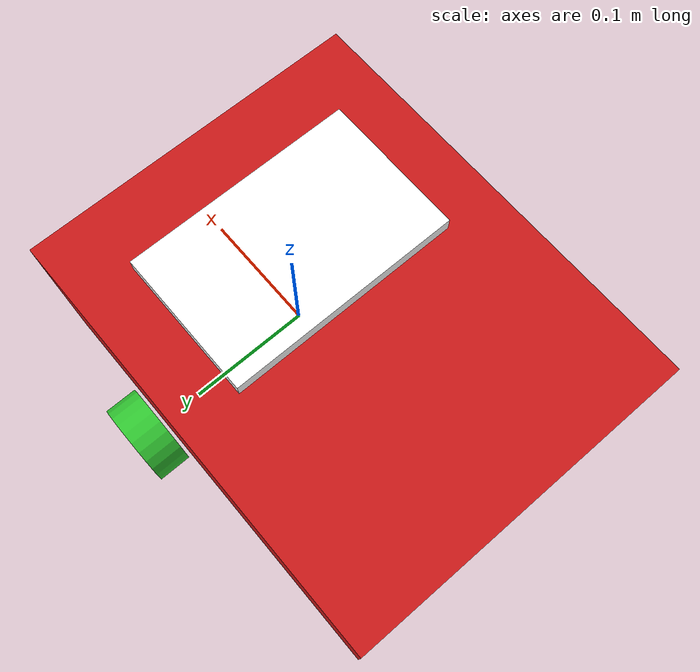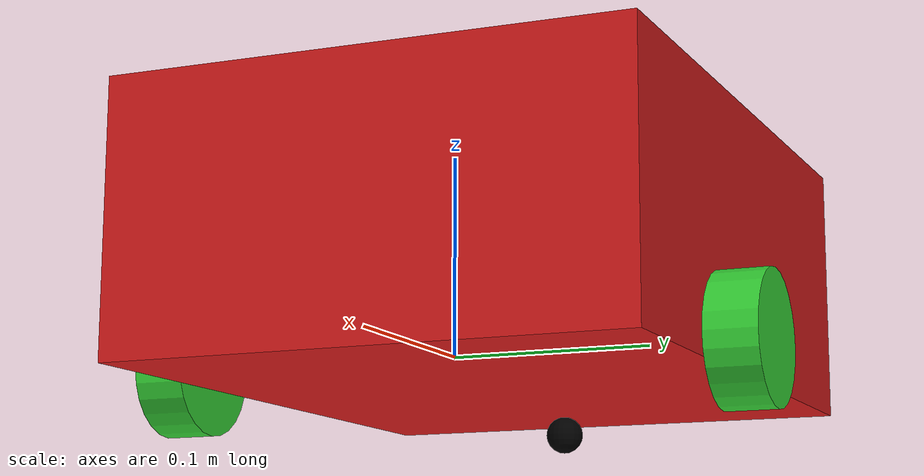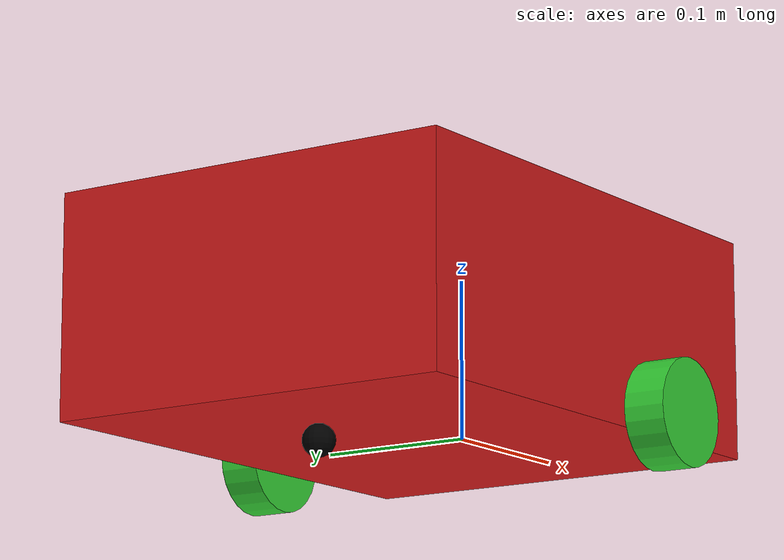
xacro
<?xml version="1.0"?>
<robot xmlns:xacro="http://www.ros.org/wiki/xacro" >

    <xacro:include filename="inertial_macros.xacro"/>

    <xacro:property name="chassis_length" value="0.335"/>
    <xacro:property name="chassis_width" value="0.265"/>
    <xacro:property name="chassis_height" value="0.138"/>
    <xacro:property name="chassis_mass" value="1.0"/>
    <xacro:property name="wheel_radius" value="0.033"/>
    <xacro:property name="wheel_thickness" value="0.026"/>
    <xacro:property name="wheel_mass" value="0.05"/>
    <xacro:property name="wheel_offset_x" value="0.226"/>
    <xacro:property name="wheel_offset_y" value="0.1485"/>
    <xacro:property name="wheel_offset_z" value="0.01"/>
    <xacro:property name="caster_wheel_radius" value="0.01"/>
    <xacro:property name="caster_wheel_mass" value="0.01"/>
    <xacro:property name="caster_wheel_offset_x" value="0.075"/>
    <xacro:property name="caster_wheel_offset_z" value="${wheel_offset_z - wheel_radius + caster_wheel_radius}"/>

    <material name="white">
        <color rgba="1 1 1 1" />
    </material>

    <material name="orange">
        <color rgba="1 0.6 0.2 1"/>
    </material>

    <material name="blue">
        <color rgba="0.2 0.6 1 1"/>
    </material>

    <material name="black">
        <color rgba="0 0 0 1"/>
    </material>

    <material name="red">
        <color rgba="0.8 0.1 0.1 1"/>
    </material>

    <material name="green">
        <color rgba="0.2 0.8 0.2 1"/>
    </material>

    <material name="silver">
        <color rgba="0.75 0.75 0.75 1"/>
    </material>

    <!-- BASE LINK -->

    <link name="base_link">

    </link>

    <!-- BASE_FOOTPRINT LINK -->

    <joint name="base_footprint_joint" type="fixed">
        <parent link="base_link"/>
        <child link="base_footprint"/>
        <origin xyz="0 0 0" rpy="0 0 0"/>
    </joint>

    <link name="base_footprint">
    </link>

    <!-- CHASSIS LINK -->

    <joint name="chassis_joint" type="fixed">
        <parent link="base_link"/>
        <child link="chassis"/>
        <origin xyz="${-wheel_offset_x} 0 ${-wheel_offset_z}"/>
    </joint>

    <link name="chassis">
        <visual>
            <origin xyz="${chassis_length/2} 0 ${chassis_height/2}"/>
            <geometry>
                <box size="${chassis_length} ${chassis_width} ${chassis_height}"/>
            </geometry>
            <material name="red"/>
        </visual>
        <visual>
            <origin xyz="${chassis_length/1.5} 0 ${chassis_height/1.2}"/>
            <geometry>
                <box size="${chassis_length/3} ${chassis_width/1.5} ${chassis_height/2}"/>
            </geometry>
            <material name="white"/>
        </visual>
        <collision>
            <origin xyz="${chassis_length/2} 0 ${chassis_height/2}"/>
            <geometry>
                <box size="${chassis_length} ${chassis_width} ${chassis_height}"/>
            </geometry>
        </collision>
        <xacro:inertial_box mass="0.5" x="${chassis_length}" y="${chassis_width}" z="${chassis_height}">
            <origin xyz="${chassis_length/2} 0 ${chassis_height/2}" rpy="0 0 0"/>
        </xacro:inertial_box>
    </link>

    <gazebo reference="chassis">
        <material>Gazebo/Red</material>
    </gazebo>

    <!-- LEFT WHEEL LINK -->

    <joint name="left_wheel_joint" type="continuous">
        <parent link="base_link"/>
        <child link="left_wheel"/>
        <origin xyz="0 ${wheel_offset_y} 0" rpy="-${pi/2} 0 0" />
        <axis xyz="0 0 1"/>
    </joint>

    <link name="left_wheel">
        <visual>
            <origin xyz="0 0 0" rpy="0 0 0"/>
            <geometry>
                <cylinder radius="${wheel_radius}" length="${wheel_thickness}"/>
            </geometry>
            <material name="green"/>
        </visual>
        <visual>
            <origin xyz="0 0 0" rpy="0 0 0"/>
            <geometry>
                <cylinder radius="${wheel_radius/1.5}" length="${wheel_thickness/1.2}"/>
            </geometry>
            <material name="black"/>
        </visual>
        <collision>
            <geometry>
                <sphere radius="${wheel_radius}"/>
            </geometry>
        </collision>
        <xacro:inertial_cylinder mass="${wheel_mass}" length="${wheel_thickness}" radius="${wheel_radius}">
            <origin xyz="0 0 0" rpy="0 0 0"/>
        </xacro:inertial_cylinder>
    </link>

    <gazebo reference="left_wheel">
        <material>Gazebo/Green</material>
    </gazebo>

    <!-- RIGHT WHEEL LINK -->

    <joint name="right_wheel_joint" type="continuous">
        <parent link="base_link"/>
        <child link="right_wheel"/>
        <origin xyz="0 ${-wheel_offset_y} 0" rpy="${pi/2} 0 0" />
        <axis xyz="0 0 -1"/>
    </joint>

    <link name="right_wheel">
        <visual>
            <origin xyz="0 0 0" rpy="0 0 0"/>
            <geometry>
                <cylinder radius="${wheel_radius}" length="${wheel_thickness}"/>
            </geometry>
            <material name="green"/>
        </visual>
        <visual>
            <origin xyz="0 0 0" rpy="0 0 0"/>
            <geometry>
                <cylinder radius="${wheel_radius/1.5}" length="${wheel_thickness/1.2}"/>
            </geometry>
            <material name="black"/>
        </visual>
        <collision>
            <geometry>
                <sphere radius="${wheel_radius}"/>
            </geometry>
        </collision>
        <xacro:inertial_cylinder mass="${wheel_mass}" length="${wheel_thickness}" radius="${wheel_radius}">
            <origin xyz="0 0 0" rpy="0 0 0"/>
        </xacro:inertial_cylinder>
    </link>

    <gazebo reference="right_wheel">
        <material>Gazebo/Green</material>
    </gazebo>

    <!-- CASTER WHEEL LINK -->

    <joint name="caster_wheel_joint" type="fixed">
        <parent link="chassis"/>
        <child link="caster_wheel"/>
        <origin xyz="${caster_wheel_offset_x} 0 ${caster_wheel_offset_z}"/>
    </joint>

    <link name="caster_wheel">
        <visual>
            <origin xyz="0 0 0" rpy="0 0 0"/>
            <geometry>
                <sphere radius="${caster_wheel_radius}"/>
            </geometry>
            <material name="black"/>
        </visual>
        <visual>
            <origin xyz="0 0 0" rpy="0 0 0"/>
            <geometry>
                <sphere radius="${caster_wheel_radius/2}"/>
            </geometry>
            <material name="silver"/>
        </visual>
        <collision>
            <geometry>
                <sphere radius="${caster_wheel_radius}"/>
            </geometry>
        </collision>
        <xacro:inertial_sphere mass="${caster_wheel_mass}" radius="${caster_wheel_radius}">
            <origin xyz="0 0 0" rpy="0 0 0"/>
        </xacro:inertial_sphere>
    </link>

    <gazebo reference="caster_wheel">
        <material>Gazebo/Black</material>
        <mu1 value="0.001"/>
        <mu2 value="0.001"/>
    </gazebo>

</robot>
